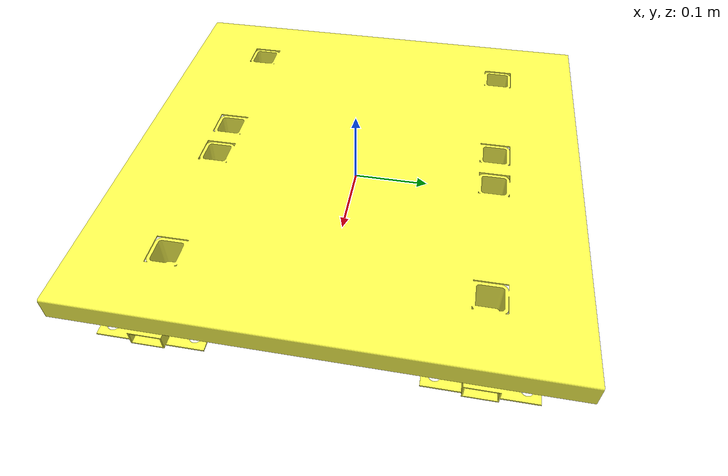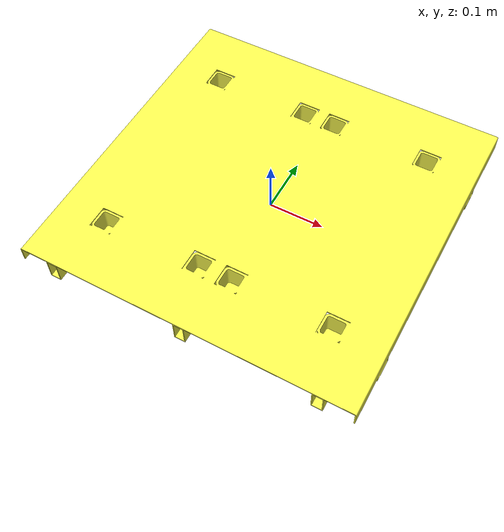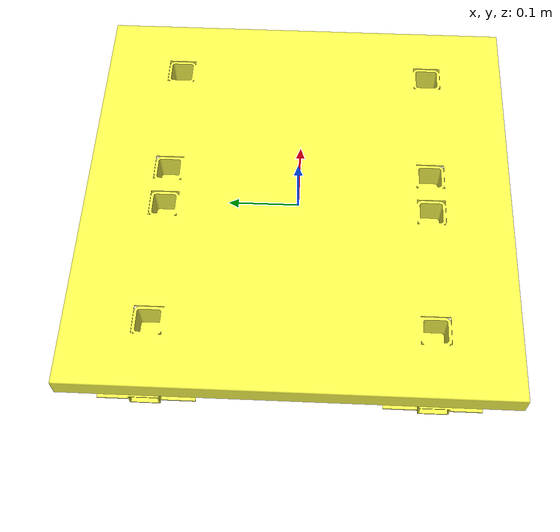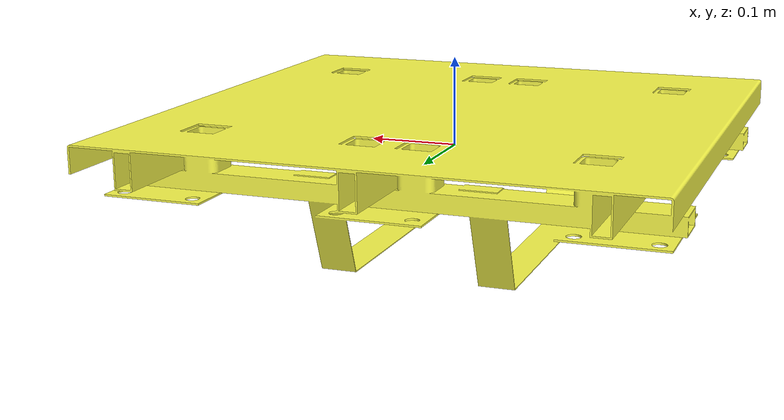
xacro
<?xml version="1.0"?>
<robot xmlns:xacro="http://www.ros.org/wiki/xacro" name="CH03">
  <xacro:property name="rftf_Base2AcopleTrasero">
  	<origin xyz="-0.300 0.000 -0.010" rpy="0 0 0"/>
  </xacro:property>
  <xacro:property name="rftf_Base2AcopleDelantero">
  	<origin xyz="0.300 0.000 -0.010" rpy="0 0 0"/>
  </xacro:property>
  <xacro:property name="rftf_Base2EjeTraseroCentro">
  	<origin xyz="-0.240 0.000 -0.022" rpy="3.1415 0 0"/>
  </xacro:property>
  <xacro:property name="rftf_Base2EjeDelanteroCentro">
  	<origin xyz="0.240 0.000 -0.022" rpy="3.1415 0 0"/>
  </xacro:property>
    <xacro:property name="rftf_Base2EjeDelanteroDerecha">
        <origin xyz="0.240 -0.188 -0.022" rpy="3.1415 0 -1.5708"/>
    </xacro:property>
    <xacro:property name="rftf_Base2EjeDelanteroIzquierda">
        <origin xyz="0.240 0.188 -0.022" rpy="3.1415 0 -1.5708"/>
    </xacro:property>

  <material name="blue">
    <color rgba="0 0 0.8 1"/>
  </material>
  <material name="white">
    <color rgba="1 1 1 1"/>
  </material>
  <material name="red">
    <color rgba="0.8 0 0 1"/>
  </material>
  <material name="yellow">
    <color rgba="1 1 0.3 1"/>
  </material>

  <link name="link_base">
    <inertial>
    	<origin xyz="0.000 0.000 0.018" rpy="0 0 0"/>
    	<mass value="13.348"/>
    	<inertia 	ixx="0.430" 	ixy="0.000" 	ixz="0.000"
    					iyy="0.462"	iyz="0.000"
    							izz="0.868"/>
    </inertial>
    <visual>
      <geometry>
        <mesh filename="file://$(find carrolac_description)/meshes/CHASIS_03.STL" scale="1 1 1"/>
      </geometry>
      <material name="yellow"/>
    </visual>
    <collision>
      <geometry>
        <mesh filename="file://$(find carrolac_description)/meshes/CHASIS_03.STL" scale="1 1 1"/>
      </geometry>
    </collision>
  </link>

</robot>
